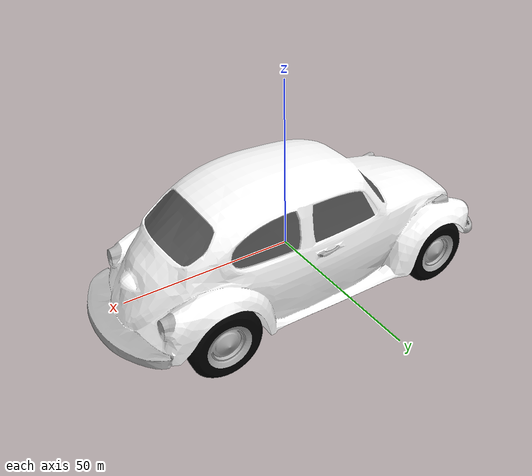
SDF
<?xml version='1.0'?>
<sdf version='1.6'>
  <model name='car2'>
    <link name='link'>
      <inertial>
        <mass>1</mass>
        <inertia>
          <ixx>2</ixx>
          <ixy>0.1</ixy>
          <ixz>0</ixz>
          <iyy>2</iyy>
          <iyz>0</iyz>
          <izz>0.083</izz>
        </inertia>
       z
      </inertial>
      <self_collide>0</self_collide>
      <enable_wind>0</enable_wind>
      <kinematic>0</kinematic>
	<pose frame=''>-7 -12.3 0 0 0 -1.5707963267949</pose>
      <gravity>1</gravity>
      <visual name='visual'>
        <cast_shadows>0</cast_shadows>
        <geometry>
          <mesh>
            <uri>model://car2/meshes/car2.dae</uri>
            <scale>0.1 0.1 0.1</scale>
          </mesh>
        </geometry>
        <pose frame=''>0 0 0 0 -0 0</pose>
        <transparency>0</transparency>
        <material>
          <shader type='vertex'>
            <normal_map>__default__</normal_map>
          </shader>
        </material>
      </visual>
      <collision name='collision'>
        <laser_retro>0</laser_retro>
        <max_contacts>10</max_contacts>
        <pose frame=''>0 0 0.7 0 -0 0</pose>
        <geometry>
          <box>
            <size>4.5 2 1.4</size>
          </box>
        </geometry>
        <surface>
          <friction>
            <ode>
              <mu>1</mu>
              <mu2>1</mu2>
              <fdir1>0 0 0</fdir1>
              <slip1>0</slip1>
              <slip2>0</slip2>
            </ode>
            <torsional>
              <coefficient>1</coefficient>
              <patch_radius>0</patch_radius>
              <surface_radius>0</surface_radius>
              <use_patch_radius>1</use_patch_radius>
              <ode>
                <slip>0</slip>
              </ode>
            </torsional>
          </friction>
          <bounce>
            <restitution_coefficient>0</restitution_coefficient>
            <threshold>1e+06</threshold>
          </bounce>
          <contact>
            <collide_without_contact>0</collide_without_contact>
            <collide_without_contact_bitmask>1</collide_without_contact_bitmask>
            <collide_bitmask>1</collide_bitmask>
            <ode>
              <soft_cfm>0</soft_cfm>
              <soft_erp>0.2</soft_erp>
              <kp>1e+13</kp>
              <kd>1</kd>
              <max_vel>0.01</max_vel>
              <min_depth>0</min_depth>
            </ode>
            <bullet>
              <split_impulse>1</split_impulse>
              <split_impulse_penetration_threshold>-0.01</split_impulse_penetration_threshold>
              <soft_cfm>0</soft_cfm>
              <soft_erp>0.2</soft_erp>
              <kp>1e+13</kp>
              <kd>1</kd>
            </bullet>
          </contact>
        </surface>
      </collision>
    </link>
    <static>0</static>
    <allow_auto_disable>1</allow_auto_disable>
  </model>
</sdf>
